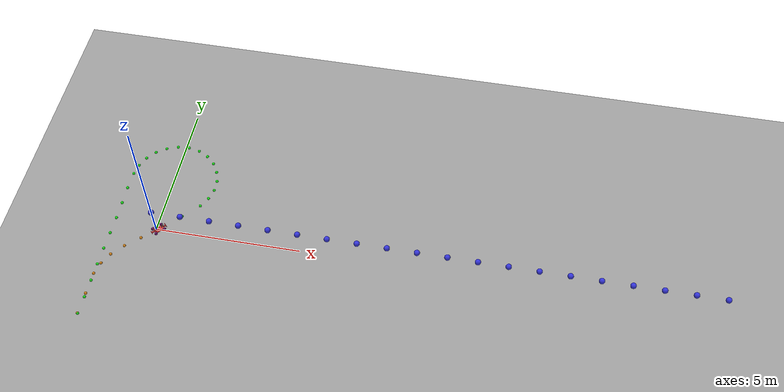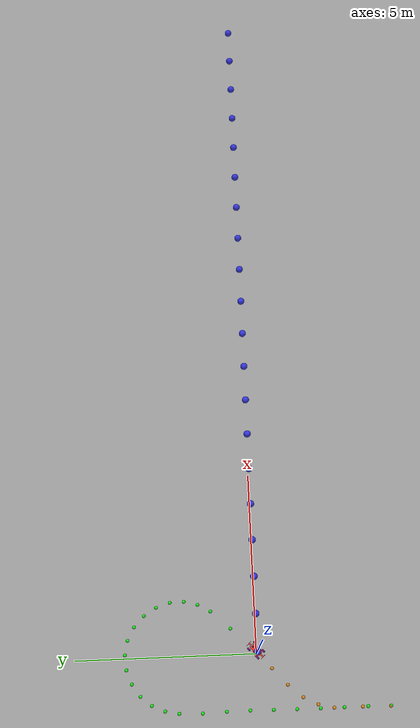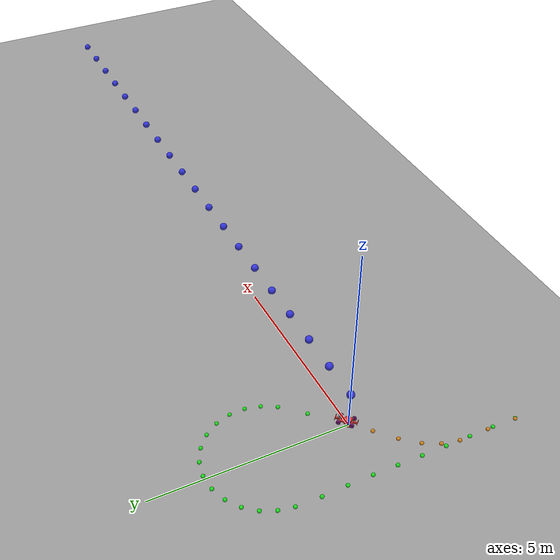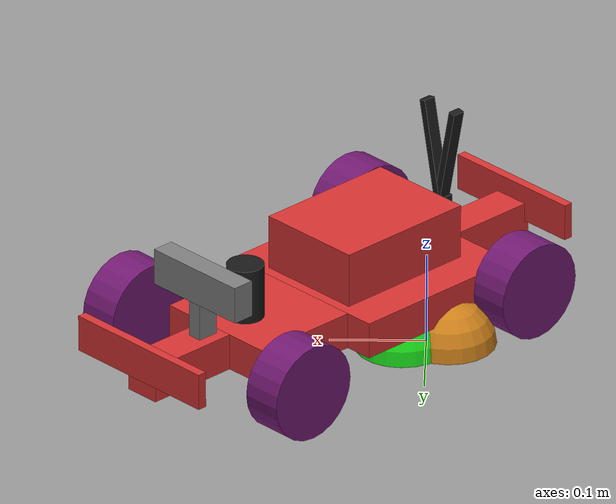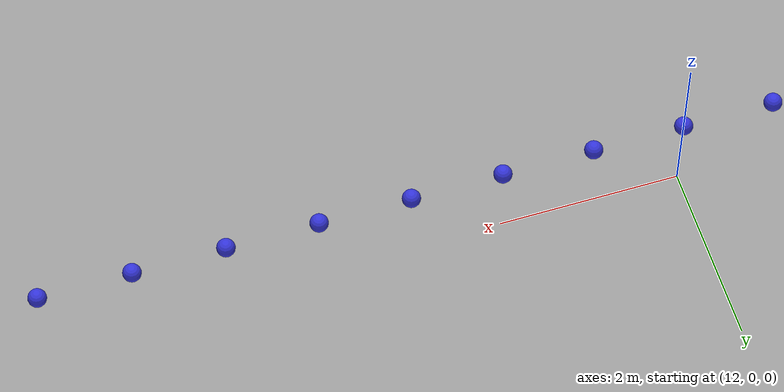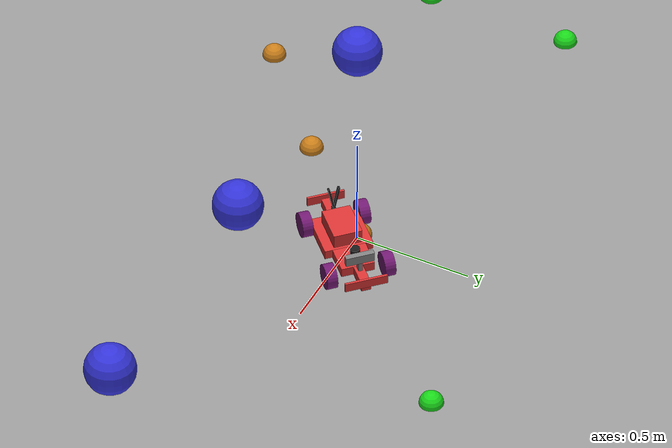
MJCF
<mujoco><include file="scene_without_walls.xml" /><worldbody><body name="Fleet1Tenth_0" pos="0.1 0.0 .052388" quat="0.9238795325112867 0 0 0.3826834323650898"><inertial pos="0 0 0" diaginertia=".05 .05 .08" mass="3.0" /><joint name="Fleet1Tenth_0" type="free" /><site name="Fleet1Tenth_0_cog" pos="0 0 0" /><geom name="Fleet1Tenth_0_chassis_b" type="box" contype="0" conaffinity="0" size=".10113 .1016 .02" pos="-.06 0 0" rgba="0.85 0.2 0.2 1.0" /><geom name="Fleet1Tenth_0_chassis_f" type="box" contype="0" conaffinity="0" size=".06 .07 .02" pos=".10113 0 0" rgba="0.85 0.2 0.2 1.0" /><geom name="Fleet1Tenth_0_front" type="box" contype="0" conaffinity="0" size=".052388 .02 .02" pos=".2135 0 0" rgba="0.85 0.2 0.2 1.0" /><geom name="Fleet1Tenth_0_back" type="box" contype="0" conaffinity="0" size=".052388 .02 .02" pos="-.2135 0 0" rgba="0.85 0.2 0.2 1.0" /><geom name="Fleet1Tenth_0_front_bumper" type="box" contype="0" conaffinity="0" size=".005 .09 .02" pos=".265888 0 0.02" rgba="0.85 0.2 0.2 1.0" /><geom name="Fleet1Tenth_0_back_bumper" type="box" contype="0" conaffinity="0" size=".005 .08 .02" pos="-.265888 0 0.02" rgba="0.85 0.2 0.2 1.0" /><geom name="Fleet1Tenth_0_number" type="cylinder" contype="0" conaffinity="0" size=".01984 .03" pos=".12 0 .05" rgba="0.1 0.1 0.1 1.0" /><geom name="Fleet1Tenth_0_camera" type="box" contype="0" conaffinity="0" size=".012 .06 0.02" pos=".18 0 .08" /><geom name="Fleet1Tenth_0_camera_holder" type="box" contype="0" conaffinity="0" size=".012 .008 .02" pos=".18 0 .04" /><geom name="Fleet1Tenth_0_circuits" type="box" contype="0" conaffinity="0" size=".08 .06 .03" pos="-.05 0 .05" rgba="0.85 0.2 0.2 1.0" /><geom name="Fleet1Tenth_0_antennal" type="box" contype="0" conaffinity="0" size=".007 .004 .06" pos="-.16 -.01 .105" euler="0.2 0 0" rgba=".1 .1 .1 1.0" /><geom name="Fleet1Tenth_0_antennar" type="box" contype="0" conaffinity="0" size=".007 .004 .06" pos="-.16 .01 .105" euler="-0.2 0 0" rgba=".1 .1 .1 1.0" /><geom name="Fleet1Tenth_0_antenna_holder" type="box" contype="0" conaffinity="0" size=".008 .008 .02" pos="-.16 0 .04" rgba=".1 .1 .1 1.0" /><body name="Fleet1Tenth_0_wheelfl"><joint name="Fleet1Tenth_0_wheelfl_steer" type="hinge" pos="0.16113 .10016 0" limited="true" frictionloss="0.2" damping="0.2" armature="0.001" range="-0.6 0.6" axis="0 0 1" /><joint name="Fleet1Tenth_0_wheelfl" type="hinge" pos="0.16113 .122385 0" axis="0 1 0" frictionloss="0.01" damping="0.00001" armature="0.05" limited="false" /><geom name="Fleet1Tenth_0_wheelfl" type="cylinder" contype="0" conaffinity="0" size=".052388 .022225" pos="0.16113 .122385 0" mass="0.1" material="material_check" euler="1.571 0 0" /></body><body name="Fleet1Tenth_0_wheelrl"><joint name="Fleet1Tenth_0_wheelrl" type="hinge" pos="-0.16113 .122385 0" axis="0 1 0" frictionloss="0.01" damping="0.00001" armature="0.05" limited="false" /><geom name="Fleet1Tenth_0_wheelrl" type="cylinder" contype="0" conaffinity="0" size=".052388 .022225" pos="-0.16113 .122385 0" mass="0.1" material="material_check" euler="1.571 0 0" /></body><body name="Fleet1Tenth_0_wheelfr"><joint name="Fleet1Tenth_0_wheelfr_steer" type="hinge" pos="0.16113 -.10016 0" limited="true" frictionloss="0.2" damping="0.2" armature="0.001" range="-0.6 0.6" axis="0 0 1" /><joint name="Fleet1Tenth_0_wheelfr" type="hinge" pos="0.16113 -.122385 0" axis="0 1 0" frictionloss="0.01" damping="0.00001" armature="0.05" limited="false" /><geom name="Fleet1Tenth_0_wheelfr" type="cylinder" contype="0" conaffinity="0" size=".052388 .022225" pos="0.16113 -.122385 0" mass="0.1" material="material_check" euler="1.571 0 0" /></body><body name="Fleet1Tenth_0_wheelrr"><joint name="Fleet1Tenth_0_wheelrr" type="hinge" pos="-0.16113 -.122385 0" axis="0 1 0" frictionloss="0.01" damping="0.00001" armature="0.05" limited="false" /><geom name="Fleet1Tenth_0_wheelrr" type="cylinder" contype="0" conaffinity="0" size=".052388 .022225" pos="-0.16113 -.122385 0" mass="0.1" material="material_check" euler="1.571 0 0" /></body></body><body name="mpcc_0" mocap="true" pos="0 0 1" quat="0.9485664043524404 0 0 0.31657823130133655"><geom name="mpcc_marker0" type="sphere" contype="0" conaffinity="0" size="0.1" pos="0 0 0" rgba="0.2 0.2 0.85 1.0" /></body><body name="mpcc_1" mocap="true" pos="1 0 1" quat="0.9485664043524404 0 0 0.31657823130133655"><geom name="mpcc_marker1" type="sphere" contype="0" conaffinity="0" size="0.1" pos="0 0 0" rgba="0.2 0.2 0.85 1.0" /></body><body name="mpcc_2" mocap="true" pos="2 0 1" quat="0.9485664043524404 0 0 0.31657823130133655"><geom name="mpcc_marker2" type="sphere" contype="0" conaffinity="0" size="0.1" pos="0 0 0" rgba="0.2 0.2 0.85 1.0" /></body><body name="mpcc_3" mocap="true" pos="3 0 1" quat="0.9485664043524404 0 0 0.31657823130133655"><geom name="mpcc_marker3" type="sphere" contype="0" conaffinity="0" size="0.1" pos="0 0 0" rgba="0.2 0.2 0.85 1.0" /></body><body name="mpcc_4" mocap="true" pos="4 0 1" quat="0.9485664043524404 0 0 0.31657823130133655"><geom name="mpcc_marker4" type="sphere" contype="0" conaffinity="0" size="0.1" pos="0 0 0" rgba="0.2 0.2 0.85 1.0" /></body><body name="mpcc_5" mocap="true" pos="5 0 1" quat="0.9485664043524404 0 0 0.31657823130133655"><geom name="mpcc_marker5" type="sphere" contype="0" conaffinity="0" size="0.1" pos="0 0 0" rgba="0.2 0.2 0.85 1.0" /></body><body name="mpcc_6" mocap="true" pos="6 0 1" quat="0.9485664043524404 0 0 0.31657823130133655"><geom name="mpcc_marker6" type="sphere" contype="0" conaffinity="0" size="0.1" pos="0 0 0" rgba="0.2 0.2 0.85 1.0" /></body><body name="mpcc_7" mocap="true" pos="7 0 1" quat="0.9485664043524404 0 0 0.31657823130133655"><geom name="mpcc_marker7" type="sphere" contype="0" conaffinity="0" size="0.1" pos="0 0 0" rgba="0.2 0.2 0.85 1.0" /></body><body name="mpcc_8" mocap="true" pos="8 0 1" quat="0.9485664043524404 0 0 0.31657823130133655"><geom name="mpcc_marker8" type="sphere" contype="0" conaffinity="0" size="0.1" pos="0 0 0" rgba="0.2 0.2 0.85 1.0" /></body><body name="mpcc_9" mocap="true" pos="9 0 1" quat="0.9485664043524404 0 0 0.31657823130133655"><geom name="mpcc_marker9" type="sphere" contype="0" conaffinity="0" size="0.1" pos="0 0 0" rgba="0.2 0.2 0.85 1.0" /></body><body name="mpcc_10" mocap="true" pos="10 0 1" quat="0.9485664043524404 0 0 0.31657823130133655"><geom name="mpcc_marker10" type="sphere" contype="0" conaffinity="0" size="0.1" pos="0 0 0" rgba="0.2 0.2 0.85 1.0" /></body><body name="mpcc_11" mocap="true" pos="11 0 1" quat="0.9485664043524404 0 0 0.31657823130133655"><geom name="mpcc_marker11" type="sphere" contype="0" conaffinity="0" size="0.1" pos="0 0 0" rgba="0.2 0.2 0.85 1.0" /></body><body name="mpcc_12" mocap="true" pos="12 0 1" quat="0.9485664043524404 0 0 0.31657823130133655"><geom name="mpcc_marker12" type="sphere" contype="0" conaffinity="0" size="0.1" pos="0 0 0" rgba="0.2 0.2 0.85 1.0" /></body><body name="mpcc_13" mocap="true" pos="13 0 1" quat="0.9485664043524404 0 0 0.31657823130133655"><geom name="mpcc_marker13" type="sphere" contype="0" conaffinity="0" size="0.1" pos="0 0 0" rgba="0.2 0.2 0.85 1.0" /></body><body name="mpcc_14" mocap="true" pos="14 0 1" quat="0.9485664043524404 0 0 0.31657823130133655"><geom name="mpcc_marker14" type="sphere" contype="0" conaffinity="0" size="0.1" pos="0 0 0" rgba="0.2 0.2 0.85 1.0" /></body><body name="mpcc_15" mocap="true" pos="15 0 1" quat="0.9485664043524404 0 0 0.31657823130133655"><geom name="mpcc_marker15" type="sphere" contype="0" conaffinity="0" size="0.1" pos="0 0 0" rgba="0.2 0.2 0.85 1.0" /></body><body name="mpcc_16" mocap="true" pos="16 0 1" quat="0.9485664043524404 0 0 0.31657823130133655"><geom name="mpcc_marker16" type="sphere" contype="0" conaffinity="0" size="0.1" pos="0 0 0" rgba="0.2 0.2 0.85 1.0" /></body><body name="mpcc_17" mocap="true" pos="17 0 1" quat="0.9485664043524404 0 0 0.31657823130133655"><geom name="mpcc_marker17" type="sphere" contype="0" conaffinity="0" size="0.1" pos="0 0 0" rgba="0.2 0.2 0.85 1.0" /></body><body name="mpcc_18" mocap="true" pos="18 0 1" quat="0.9485664043524404 0 0 0.31657823130133655"><geom name="mpcc_marker18" type="sphere" contype="0" conaffinity="0" size="0.1" pos="0 0 0" rgba="0.2 0.2 0.85 1.0" /></body><body name="mpcc_19" mocap="true" pos="19 0 1" quat="0.9485664043524404 0 0 0.31657823130133655"><geom name="mpcc_marker19" type="sphere" contype="0" conaffinity="0" size="0.1" pos="0 0 0" rgba="0.2 0.2 0.85 1.0" /></body><body name="ref_trajectory_body0" mocap="true" pos="0 0 0"><geom type="sphere" size="0.05" contype="0" conaffinity="0" rgba="0.1 0.85 0.1 1.0" pos="0.02486284043182669 0.009211283651858387 0" /><geom type="sphere" size="0.05" contype="0" conaffinity="0" rgba="0.1 0.85 0.1 1.0" pos="0.7114015824545961 0.689100745879339 0" /><geom type="sphere" size="0.05" contype="0" conaffinity="0" rgba="0.1 0.85 0.1 1.0" pos="1.2010451560582016 1.224944541895591 0" /><geom type="sphere" size="0.05" contype="0" conaffinity="0" rgba="0.1 0.85 0.1 1.0" pos="1.3951444761136762 1.5798482964596963 0" /><geom type="sphere" size="0.05" contype="0" conaffinity="0" rgba="0.1 0.85 0.1 1.0" pos="1.491070834324122 1.9591387653490506 0" /><geom type="sphere" size="0.05" contype="0" conaffinity="0" rgba="0.1 0.85 0.1 1.0" pos="1.4798456092089562 2.3517436181580424 0" /><geom type="sphere" size="0.05" contype="0" conaffinity="0" rgba="0.1 0.85 0.1 1.0" pos="1.3608784274666696 2.736176583828855 0" /><geom type="sphere" size="0.05" contype="0" conaffinity="0" rgba="0.1 0.85 0.1 1.0" pos="1.143975333089819 3.083087395262925 0" /><geom type="sphere" size="0.05" contype="0" conaffinity="0" rgba="0.1 0.85 0.1 1.0" pos="0.8467943002062883 3.3610040486798622 0" /><geom type="sphere" size="0.05" contype="0" conaffinity="0" rgba="0.1 0.85 0.1 1.0" pos="0.4903807464803051 3.5461631137898015 0" /><geom type="sphere" size="0.05" contype="0" conaffinity="0" rgba="0.1 0.85 0.1 1.0" pos="0.09836445509357505 3.6242802230958286 0" /><geom type="sphere" size="0.05" contype="0" conaffinity="0" rgba="0.1 0.85 0.1 1.0" pos="-0.3030415856133284 3.5905526400823775 0" /><geom type="sphere" size="0.05" contype="0" conaffinity="0" rgba="0.1 0.85 0.1 1.0" pos="-0.6850411035183791 3.449659341093554 0" /><geom type="sphere" size="0.05" contype="0" conaffinity="0" rgba="0.1 0.85 0.1 1.0" pos="-1.0163175395866768 3.215729108678408 0" /><geom type="sphere" size="0.05" contype="0" conaffinity="0" rgba="0.1 0.85 0.1 1.0" pos="-1.2677761906612208 2.909919602801481 0" /><geom type="sphere" size="0.05" contype="0" conaffinity="0" rgba="0.1 0.85 0.1 1.0" pos="-1.4269183719899026 2.5528506689815575 0" /><geom type="sphere" size="0.05" contype="0" conaffinity="0" rgba="0.1 0.85 0.1 1.0" pos="-1.5021155776240422 2.1690125925031976 0" /><geom type="sphere" size="0.05" contype="0" conaffinity="0" rgba="0.1 0.85 0.1 1.0" pos="-1.5195321269267887 1.528546401049925 0" /><geom type="sphere" size="0.05" contype="0" conaffinity="0" rgba="0.1 0.85 0.1 1.0" pos="-1.498351556625378 0.8727323676180007 0" /><geom type="sphere" size="0.05" contype="0" conaffinity="0" rgba="0.1 0.85 0.1 1.0" pos="-1.4899225724059135 0.22974949787381596 0" /><geom type="sphere" size="0.05" contype="0" conaffinity="0" rgba="0.1 0.85 0.1 1.0" pos="-1.4959518068307964 -0.40549449744416777 0" /><geom type="sphere" size="0.05" contype="0" conaffinity="0" rgba="0.1 0.85 0.1 1.0" pos="-1.5032681913078547 -1.0430387465214555 0" /><geom type="sphere" size="0.05" contype="0" conaffinity="0" rgba="0.1 0.85 0.1 1.0" pos="-1.5047204054204169 -1.6872947766377784 0" /><geom type="sphere" size="0.05" contype="0" conaffinity="0" rgba="0.1 0.85 0.1 1.0" pos="-1.5000256689857536 -2.3366409849310514 0" /><geom type="sphere" size="0.05" contype="0" conaffinity="0" rgba="0.1 0.85 0.1 1.0" pos="-1.4957699991908109 -2.983422344668006 0" /><geom type="sphere" size="0.05" contype="0" conaffinity="0" rgba="0.1 0.85 0.1 1.0" pos="-1.5054082280862442 -3.6139503854905235 0" /></body><body name="ref_trajectory_body1" mocap="true" pos="0 0 0"><geom type="sphere" size="0.05" contype="0" conaffinity="0" rgba="0.8 0.5 0.1 1.0" pos="-1.5137496292455075 -3.606994046854743 0" /><geom type="sphere" size="0.05" contype="0" conaffinity="0" rgba="0.8 0.5 0.1 1.0" pos="-1.5043224958544583 -2.841100047563656 0" /><geom type="sphere" size="0.05" contype="0" conaffinity="0" rgba="0.8 0.5 0.1 1.0" pos="-1.5019861851773433 -2.061395078361718 0" /><geom type="sphere" size="0.05" contype="0" conaffinity="0" rgba="0.8 0.5 0.1 1.0" pos="-1.400276853577197 -1.6286994874370417 0" /><geom type="sphere" size="0.05" contype="0" conaffinity="0" rgba="0.8 0.5 0.1 1.0" pos="-1.1970929725818726 -1.2314686455870132 0" /><geom type="sphere" size="0.05" contype="0" conaffinity="0" rgba="0.8 0.5 0.1 1.0" pos="-0.8529181708187096 -0.8254829530522845 0" /><geom type="sphere" size="0.05" contype="0" conaffinity="0" rgba="0.8 0.5 0.1 1.0" pos="-0.40328044776921984 -0.41602106344611184 0" /><geom type="sphere" size="0.05" contype="0" conaffinity="0" rgba="0.8 0.5 0.1 1.0" pos="-0.023060165235576455 0.0018268404479461486 0" /></body></worldbody><contact><pair geom1="Fleet1Tenth_0_wheelfl" geom2="roundabout" condim="6" friction="2.5 2.5 .009 .0001 .0001" /><pair geom1="Fleet1Tenth_0_wheelfr" geom2="roundabout" condim="6" friction="2.5 2.5 .009 .0001 .0001" /><pair geom1="Fleet1Tenth_0_wheelrl" geom2="roundabout" condim="6" friction="2.5 2.5 .009 .0001 .0001" /><pair geom1="Fleet1Tenth_0_wheelrr" geom2="roundabout" condim="6" friction="2.5 2.5 .009 .0001 .0001" /><exclude name="car_marker_exc0" body1="Fleet1Tenth_0" body2="mpcc_0" /><exclude name="car_marker_exc1" body1="Fleet1Tenth_0" body2="mpcc_1" /><exclude name="car_marker_exc2" body1="Fleet1Tenth_0" body2="mpcc_2" /><exclude name="car_marker_exc3" body1="Fleet1Tenth_0" body2="mpcc_3" /><exclude name="car_marker_exc4" body1="Fleet1Tenth_0" body2="mpcc_4" /><exclude name="car_marker_exc5" body1="Fleet1Tenth_0" body2="mpcc_5" /><exclude name="car_marker_exc6" body1="Fleet1Tenth_0" body2="mpcc_6" /><exclude name="car_marker_exc7" body1="Fleet1Tenth_0" body2="mpcc_7" /><exclude name="car_marker_exc8" body1="Fleet1Tenth_0" body2="mpcc_8" /><exclude name="car_marker_exc9" body1="Fleet1Tenth_0" body2="mpcc_9" /><exclude name="car_marker_exc10" body1="Fleet1Tenth_0" body2="mpcc_10" /><exclude name="car_marker_exc11" body1="Fleet1Tenth_0" body2="mpcc_11" /><exclude name="car_marker_exc12" body1="Fleet1Tenth_0" body2="mpcc_12" /><exclude name="car_marker_exc13" body1="Fleet1Tenth_0" body2="mpcc_13" /><exclude name="car_marker_exc14" body1="Fleet1Tenth_0" body2="mpcc_14" /><exclude name="car_marker_exc15" body1="Fleet1Tenth_0" body2="mpcc_15" /><exclude name="car_marker_exc16" body1="Fleet1Tenth_0" body2="mpcc_16" /><exclude name="car_marker_exc17" body1="Fleet1Tenth_0" body2="mpcc_17" /><exclude name="car_marker_exc18" body1="Fleet1Tenth_0" body2="mpcc_18" /><exclude name="car_marker_exc19" body1="Fleet1Tenth_0" body2="mpcc_19" /><exclude name="marker_exclude0" body1="Fleet1Tenth_0" body2="ref_trajectory_body0" /><exclude name="marker_exclude1" body1="Fleet1Tenth_0" body2="ref_trajectory_body1" /></contact><actuator><motor name="Fleet1Tenth_0_wheelfl_actr" joint="Fleet1Tenth_0_wheelfl" /><motor name="Fleet1Tenth_0_wheelfr_actr" joint="Fleet1Tenth_0_wheelfr" /><motor name="Fleet1Tenth_0_wheelrl_actr" joint="Fleet1Tenth_0_wheelrl" /><motor name="Fleet1Tenth_0_wheelrr_actr" joint="Fleet1Tenth_0_wheelrr" /><position forcelimited="true" forcerange="-5 5" name="Fleet1Tenth_0_wheelfl_actr_steer" joint="Fleet1Tenth_0_wheelfl_steer" kp="15" /><position forcelimited="true" forcerange="-5 5" name="Fleet1Tenth_0_wheelfr_actr_steer" joint="Fleet1Tenth_0_wheelfr_steer" kp="15" /></actuator><sensor><gyro site="Fleet1Tenth_0_cog" name="Fleet1Tenth_0_gyro" /><velocimeter site="Fleet1Tenth_0_cog" name="Fleet1Tenth_0_velocimeter" /><framepos objtype="site" objname="Fleet1Tenth_0_cog" name="Fleet1Tenth_0_posimeter" /><framequat objtype="site" objname="Fleet1Tenth_0_cog" name="Fleet1Tenth_0_orimeter" /><accelerometer site="Fleet1Tenth_0_cog" name="Fleet1Tenth_0_accelerometer" /></sensor><option><flag contact="enable" /></option></mujoco>

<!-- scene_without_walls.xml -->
<mujoco model="Lagyi">

  <default class="main">
    <!--
    rotate by 90 degrees about the vertical axis
    to match the optitrack coordinate system
    -->

    <default class="lagyi">
      <geom quat="0 0 0.7071 0.7071" rgba="0.9 0.9 0.9 1"/>
    </default>

    <default class="pole">
      <geom rgba="0.1 0.1 0.1 1"/>
      <default class="pole_top">
        <geom type="cylinder" size="0.022 0.5" pos="0 0 0.5"/>
      </default>
      <default class="pole_bottom1">
        <geom type="box" size="0.02 0.205 0.02" quat="0.7071 0 0 0.7071" pos="0 0 0.02"/>
        <default class="pole_bottom2">
          <geom quat="1 0 0 0"/>
        </default>
      </default>
    </default>

    <default class="landing_zone">
      <geom type="box" pos="0 0 0.01" size="0.1175 0.0975 0.01" rgba="0.8 0.8 0.8 1.0"/>
    </default>
  </default>

  <compiler angle="radian" meshdir=""/>
  <option timestep="0.001"/>
  <visual>
    <quality shadowsize="8192"/>
  </visual>

  <asset>
    <mesh file="meshes/building/lagyi_cockpit.stl" name="cockpit" smoothnormal="true" scale="0.0085 0.0085 0.0085"/>
    <mesh file="meshes/building/lagyi_fal1.stl" name="fal1" smoothnormal="true" scale="0.0085 0.0085 0.0085"/>
    <mesh file="meshes/building/lagyi_fal2.stl" name="fal2" smoothnormal="true" scale="0.0085 0.0085 0.0085"/>
    <mesh file="meshes/building/lagyi_oszlop1.stl" name="oszlop1" smoothnormal="true" scale="0.0085 0.0085 0.0085"/>
    <mesh file="meshes/building/lagyi_oszlop2.stl" name="oszlop2" smoothnormal="true" scale="0.0085 0.0085 0.0085"/>
    <mesh file="meshes/building/lagyi_oszlop3.stl" name="oszlop3" smoothnormal="true" scale="0.0085 0.0085 0.0085"/>
    <mesh file="meshes/building/lagyi_oszlop4.stl" name="oszlop4" smoothnormal="true" scale="0.0085 0.0085 0.0085"/>

    <mesh file="meshes/bucket/Bucket3.obj" name="bucket" smoothnormal="false" scale="0.035 0.035 0.035"/>

    <texture type="skybox" builtin="gradient" rgb1=".3 .5 .7" rgb2="0 0 0" width="512" height="512"/>
    <texture name="grid" type="2d" builtin="checker" width="512" height="512" rgb1=".1 .1 .1" rgb2=".2 .2 .2"/>
    <texture name="tex-carpet" type="2d" file="textures/carpet_lagyi4.png"/>
    <texture name="tex-roundabout" type="2d" file="textures/roundabout.png"/>
    <texture name="tex-hospital" type="2d" file="textures/hospital.png"/>
    <texture name="tex-post_office" type="2d" file="textures/post_office.png"/>
    <texture name="tex-airport" type="2d" file="textures/airport.png"/>
    <texture name="tex-parking_lot" type="2d" file="textures/parking_lot.png"/>
    <texture name="tex-sztaki" type="2d" file="textures/sztaki.png"/>
    <texture name="tex-zandvoort" type="2d" file="textures/Zandvoort_map.png"/>
    <material name="grid" texture="grid" texrepeat="1 1" texuniform="true" reflectance=".05"/>
    <material name="mat-carpet" shininess="0.1" texrepeat="0.1308 0.1308" texture="tex-carpet" texuniform="true"/>
    <material name="mat-roundabout" reflectance="0.7" texrepeat="0.667 0.667" texture="tex-roundabout" texuniform="true"/>
    <material name="mat-hospital" reflectance="0.7" texrepeat="7.843 7.692" texture="tex-hospital" texuniform="true"/>
    <material name="mat-post_office" reflectance="0.7" texrepeat="7.843 7.843" texture="tex-post_office" texuniform="true"/>
    <material name="mat-airport" reflectance="0.7" texrepeat="9.524 9.524" texture="tex-airport" texuniform="true"/>
    <material name="mat-parking_lot" reflectance="0.7" texrepeat="9.524 8.696" texture="tex-parking_lot" texuniform="true"/>
    <material name="mat-sztaki" reflectance="0.7" texrepeat="9.524 9.524" texture="tex-sztaki" texuniform="true"/>
    <material name="mat-zandvoort" reflectance="0.7" texrepeat="0.08 0.08" texture="tex-zandvoort" texuniform="true"/>

    <texture name="tex_check" builtin="checker" type="2d" width="256" height="256" rgb1=".8 .1 .1" rgb2=".1 .1 .8"/>
    <material name="material_check" texture="tex_check" texrepeat="2 2" texuniform="true"/>
  </asset>

  <worldbody>
    <camera pos="2.867 -5.173 1.776" xyaxes="0.875 0.485 0.000 -0.139 0.252 0.958"/>
    <geom size="50 50 .05" type="plane" rgba="0.6 0.6 0.6 1.0" condim="3"/>

    <light dir="0 -0.3 -1" diffuse=".9 .9 .9" specular="0.6 0.9 0.6" pos="1 1 15" cutoff="70"/>
    <light dir="-.2 1 -.4" diffuse=".9 .9 .9" specular="0.6 0.9 0.6" pos="2 -5 6" cutoff="70"/>
    <light dir="-1.0 -1.0 -.4" diffuse=".9 .9 .9" specular="0.6 0.9 0.6" pos="10 10 6" cutoff="70"/>

    <geom name="roundabout" size="1.5 1.5 .05" quat="0.7071 0 0 0.7071" pos="0 0 0.001" type="plane" material="mat-roundabout" condim="3"/>
    <!--geom name="zandvoort" size="20 20 .05" quat="1 0 0 0" pos="8 0 0.005" type="plane" material="mat-zandvoort" condim="3"/-->

  </worldbody>

</mujoco>
